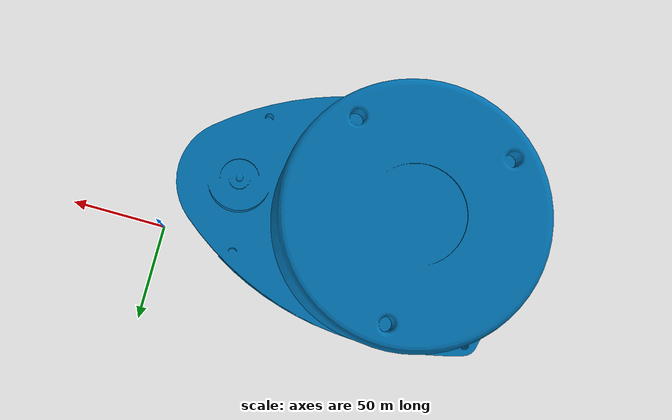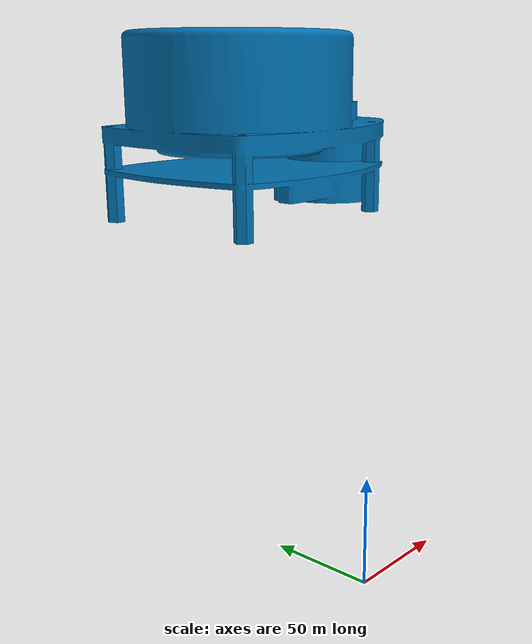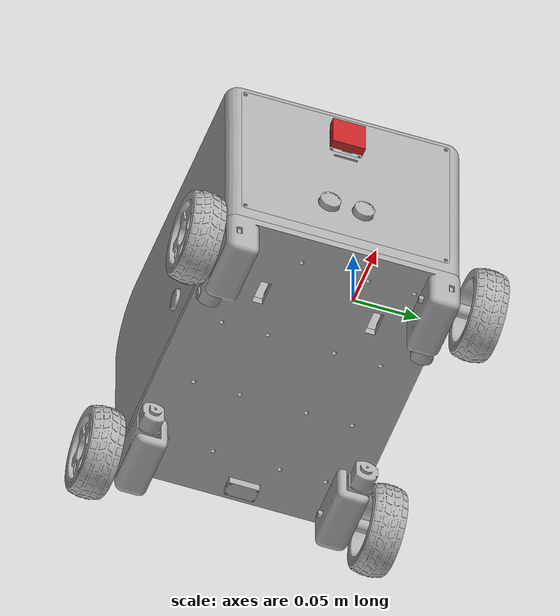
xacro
<?xml version="1.0" ?>
<robot name="adbot" xmlns:xacro="http://www.ros.org/wiki/xacro">

<xacro:include filename="$(find adbot_description)/urdf/materials.xacro" />
<xacro:include filename="$(find adbot_description)/urdf/adbot.trans" />
<xacro:include filename="$(find adbot_description)/urdf/adbot.gazebo" />
<link name="base_link">
  <inertial>
    <origin rpy="0 0 0" xyz="-0.11754380395763744 -0.008309309696808766 0.044737562719863344"/>
    <mass value="2.5803331622971"/>
    <inertia ixx="0.008602" ixy="-9e-06" ixz="-2e-06" iyy="0.016169" iyz="0.0" izz="0.024359"/>
  </inertial>
  <visual>
    <origin rpy="0 0 0" xyz="0 0 0"/>
    <geometry>
      <mesh filename="package://adbot_description/meshes/base_link.stl" scale="0.001 0.001 0.001"/>
    </geometry>
    <material name="silver"/>
  </visual>
  <collision>
    <origin rpy="0 0 0" xyz="0 0 0"/>
    <geometry>
      <mesh filename="package://adbot_description/meshes/base_link.stl" scale="0.001 0.001 0.001"/>
    </geometry>
  </collision>
</link>

<link name="body_1">
  <inertial>
    <origin rpy="0 0 0" xyz="0.0068679490257481796 -3.768684144169615e-06 0.06860823819142574"/>
    <mass value="7.889681962960808"/>
    <inertia ixx="0.059229" ixy="-1.5e-05" ixz="-0.004781" iyy="0.061661" iyz="-6e-06" izz="0.072885"/>
  </inertial>
  <visual>
    <origin rpy="0 0 0" xyz="0.117786 0.008278 -0.051635"/>
    <geometry>
      <mesh filename="package://adbot_description/meshes/body_1.stl" scale="0.001 0.001 0.001"/>
    </geometry>
    <material name="silver"/>
  </visual>
  <collision>
    <origin rpy="0 0 0" xyz="0.117786 0.008278 -0.051635"/>
    <geometry>
      <mesh filename="package://adbot_description/meshes/body_1.stl" scale="0.001 0.001 0.001"/>
    </geometry>
  </collision>
</link>

<link name="lid_1">
  <inertial>
    <origin rpy="0 0 0" xyz="0.0014890693996613257 0.07700001323512176 -0.06186218022886436"/>
    <mass value="0.4707305565916595"/>
    <inertia ixx="0.0017" ixy="0.0" ixz="0.0" iyy="0.000663" iyz="0.0" izz="0.001038"/>
  </inertial>
  <visual>
    <origin rpy="0 0 0" xyz="-0.004214 0.085278 -0.188635"/>
    <geometry>
      <mesh filename="package://adbot_description/meshes/lid_1.stl" scale="0.001 0.001 0.001"/>
    </geometry>
    <material name="silver"/>
  </visual>
  <collision>
    <origin rpy="0 0 0" xyz="-0.004214 0.085278 -0.188635"/>
    <geometry>
      <mesh filename="package://adbot_description/meshes/lid_1.stl" scale="0.001 0.001 0.001"/>
    </geometry>
  </collision>
</link>

<link name="right_door_1">
  <inertial>
    <origin rpy="0 0 0" xyz="-0.07423106191459591 -0.03892847356279871 -0.047700087861739654"/>
    <mass value="0.42036269791037006"/>
    <inertia ixx="0.001189" ixy="0.0" ixz="-0.000456" iyy="0.001385" iyz="2e-06" izz="0.000614"/>
  </inertial>
  <visual>
    <origin rpy="0 0 0" xyz="0.144786 0.010278 -0.198635"/>
    <geometry>
      <mesh filename="package://adbot_description/meshes/right_door_1.stl" scale="0.001 0.001 0.001"/>
    </geometry>
    <material name="silver"/>
  </visual>
  <collision>
    <origin rpy="0 0 0" xyz="0.144786 0.010278 -0.198635"/>
    <geometry>
      <mesh filename="package://adbot_description/meshes/right_door_1.stl" scale="0.001 0.001 0.001"/>
    </geometry>
  </collision>
</link>

<link name="left_door_1">
  <inertial>
    <origin rpy="0 0 0" xyz="-0.0742039735006979 -0.03907149996696059 -0.0477422163015801"/>
    <mass value="0.42036269791037045"/>
    <inertia ixx="0.001189" ixy="-0.0" ixz="-0.000455" iyy="0.001385" iyz="-2e-06" izz="0.000614"/>
  </inertial>
  <visual>
    <origin rpy="0 0 0" xyz="0.144786 -0.071722 -0.198635"/>
    <geometry>
      <mesh filename="package://adbot_description/meshes/left_door_1.stl" scale="0.001 0.001 0.001"/>
    </geometry>
    <material name="silver"/>
  </visual>
  <collision>
    <origin rpy="0 0 0" xyz="0.144786 -0.071722 -0.198635"/>
    <geometry>
      <mesh filename="package://adbot_description/meshes/left_door_1.stl" scale="0.001 0.001 0.001"/>
    </geometry>
  </collision>
</link>

<link name="lidar_1">
  <inertial>
    <origin rpy="0 0 0" xyz="0.0346716352597857 0.028027770370615802 0.03526252267129079"/>
    <mass value="1.3389387535639652"/>
    <inertia ixx="0.000619" ixy="-2e-06" ixz="0.000159" iyy="0.000967" iyz="-3e-06" izz="0.001105"/>
  </inertial>
  <visual>
    <origin rpy="0 0 0" xyz="0.109166 0.035895 -0.172035"/>
    <geometry>
      <mesh filename="package://adbot_description/meshes/lidar_1.stl" scale="0.001 0.001 0.001"/>
    </geometry>
    <material name="silver"/>
  </visual>
  <collision>
    <origin rpy="0 0 0" xyz="0.109166 0.035895 -0.172035"/>
    <geometry>
      <mesh filename="package://adbot_description/meshes/lidar_1.stl" scale="0.001 0.001 0.001"/>
    </geometry>
  </collision>
</link>

<link name="camera_1">
  <inertial>
    <origin rpy="0 0 0" xyz="0.0013912271839448143 6.567984359283872e-05 0.00038959398280194457"/>
    <mass value="0.006742880602527746"/>
    <inertia ixx="0.0" ixy="-0.0" ixz="-0.0" iyy="0.0" iyz="0.0" izz="0.0"/>
  </inertial>
  <visual>
    <origin rpy="0 0 0" xyz="-0.005714 0.008278 -0.164635"/>
    <geometry>
      <mesh filename="package://adbot_description/meshes/camera_1.stl" scale="0.001 0.001 0.001"/>
    </geometry>
    <material name="silver"/>
  </visual>
  <collision>
    <origin rpy="0 0 0" xyz="-0.005714 0.008278 -0.164635"/>
    <geometry>
      <mesh filename="package://adbot_description/meshes/camera_1.stl" scale="0.001 0.001 0.001"/>
    </geometry>
  </collision>
</link>

<link name="hcsr04_front_1">
  <inertial>
    <origin rpy="0 0 0" xyz="0.00033089762949217727 0.012995811567042905 0.03185305648833167"/>
    <mass value="0.048884344845399004"/>
    <inertia ixx="1e-05" ixy="-0.0" ixz="-0.0" iyy="2e-06" iyz="0.0" izz="9e-06"/>
  </inertial>
  <visual>
    <origin rpy="0 0 0" xyz="-0.004214 0.021278 -0.059835"/>
    <geometry>
      <mesh filename="package://adbot_description/meshes/hcsr04_front_1.stl" scale="0.001 0.001 0.001"/>
    </geometry>
    <material name="silver"/>
  </visual>
  <collision>
    <origin rpy="0 0 0" xyz="-0.004214 0.021278 -0.059835"/>
    <geometry>
      <mesh filename="package://adbot_description/meshes/hcsr04_front_1.stl" scale="0.001 0.001 0.001"/>
    </geometry>
  </collision>
</link>

<link name="hcsr04_right_1">
  <inertial>
    <origin rpy="0 0 0" xyz="-0.01300425203146785 -0.0005765716561509093 0.031853056488138104"/>
    <mass value="0.048884344845399254"/>
    <inertia ixx="2e-06" ixy="0.0" ixz="0.0" iyy="1e-05" iyz="0.0" izz="9e-06"/>
  </inertial>
  <visual>
    <origin rpy="0 0 0" xyz="0.078286 0.092278 -0.045835"/>
    <geometry>
      <mesh filename="package://adbot_description/meshes/hcsr04_right_1.stl" scale="0.001 0.001 0.001"/>
    </geometry>
    <material name="silver"/>
  </visual>
  <collision>
    <origin rpy="0 0 0" xyz="0.078286 0.092278 -0.045835"/>
    <geometry>
      <mesh filename="package://adbot_description/meshes/hcsr04_right_1.stl" scale="0.001 0.001 0.001"/>
    </geometry>
  </collision>
</link>

<link name="hcsr04_left_1">
  <inertial>
    <origin rpy="0 0 0" xyz="-0.012995848695311688 0.0005765981263933795 0.031853056488331755"/>
    <mass value="0.048884344845398886"/>
    <inertia ixx="2e-06" ixy="0.0" ixz="-0.0" iyy="1e-05" iyz="-0.0" izz="9e-06"/>
  </inertial>
  <visual>
    <origin rpy="0 0 0" xyz="0.078286 -0.075722 -0.045835"/>
    <geometry>
      <mesh filename="package://adbot_description/meshes/hcsr04_left_1.stl" scale="0.001 0.001 0.001"/>
    </geometry>
    <material name="silver"/>
  </visual>
  <collision>
    <origin rpy="0 0 0" xyz="0.078286 -0.075722 -0.045835"/>
    <geometry>
      <mesh filename="package://adbot_description/meshes/hcsr04_left_1.stl" scale="0.001 0.001 0.001"/>
    </geometry>
  </collision>
</link>

<link name="horn_1">
  <inertial>
    <origin rpy="0 0 0" xyz="-5.106975831115079e-08 1.3209661106280968e-08 0.03284453997922932"/>
    <mass value="0.0002829494909933873"/>
    <inertia ixx="0.0" ixy="0.0" ixz="-0.0" iyy="0.0" iyz="-0.0" izz="0.0"/>
  </inertial>
  <visual>
    <origin rpy="0 0 0" xyz="0.229786 0.008278 -0.036935"/>
    <geometry>
      <mesh filename="package://adbot_description/meshes/horn_1.stl" scale="0.001 0.001 0.001"/>
    </geometry>
    <material name="silver"/>
  </visual>
  <collision>
    <origin rpy="0 0 0" xyz="0.229786 0.008278 -0.036935"/>
    <geometry>
      <mesh filename="package://adbot_description/meshes/horn_1.stl" scale="0.001 0.001 0.001"/>
    </geometry>
  </collision>
</link>

<link name="servo_1">
  <inertial>
    <origin rpy="0 0 0" xyz="-5.712622649922672e-07 -0.014755631576454944 -0.0010994399547935504"/>
    <mass value="0.022659491876204398"/>
    <inertia ixx="3e-06" ixy="0.0" ixz="-0.0" iyy="2e-06" iyz="0.0" izz="2e-06"/>
  </inertial>
  <visual>
    <origin rpy="0 0 0" xyz="0.229786 -0.011222 -0.055135"/>
    <geometry>
      <mesh filename="package://adbot_description/meshes/servo_1.stl" scale="0.001 0.001 0.001"/>
    </geometry>
    <material name="silver"/>
  </visual>
  <collision>
    <origin rpy="0 0 0" xyz="0.229786 -0.011222 -0.055135"/>
    <geometry>
      <mesh filename="package://adbot_description/meshes/servo_1.stl" scale="0.001 0.001 0.001"/>
    </geometry>
  </collision>
</link>

<link name="wheel_fr_1">
  <inertial>
    <origin rpy="0 0 0" xyz="-4.842708241706295e-08 -0.018127091791709904 3.945685182818459e-07"/>
    <mass value="0.168011214491764"/>
    <inertia ixx="6.8e-05" ixy="-0.0" ixz="-0.0" iyy="0.000114" iyz="-0.0" izz="6.8e-05"/>
  </inertial>
  <visual>
    <origin rpy="0 0 0" xyz="0.009966 0.099378 -0.034485"/>
    <geometry>
      <mesh filename="package://adbot_description/meshes/wheel_fr_1.stl" scale="0.001 0.001 0.001"/>
    </geometry>
    <material name="silver"/>
  </visual>
  <collision>
    <origin rpy="0 0 0" xyz="0.009966 0.099378 -0.034485"/>
    <geometry>
      <mesh filename="package://adbot_description/meshes/wheel_fr_1.stl" scale="0.001 0.001 0.001"/>
    </geometry>
  </collision>
</link>

<link name="motor_fr_1">
  <inertial>
    <origin rpy="0 0 0" xyz="-0.0026419201691951777 -0.009344089364072758 -0.00864962528426276"/>
    <mass value="0.11062030248941061"/>
    <inertia ixx="8e-06" ixy="-2e-06" ixz="-0.0" iyy="4.6e-05" iyz="-0.0" izz="4.6e-05"/>
  </inertial>
  <visual>
    <origin rpy="0 0 0" xyz="0.030536 0.079478 -0.043135"/>
    <geometry>
      <mesh filename="package://adbot_description/meshes/motor_fr_1.stl" scale="0.001 0.001 0.001"/>
    </geometry>
    <material name="silver"/>
  </visual>
  <collision>
    <origin rpy="0 0 0" xyz="0.030536 0.079478 -0.043135"/>
    <geometry>
      <mesh filename="package://adbot_description/meshes/motor_fr_1.stl" scale="0.001 0.001 0.001"/>
    </geometry>
  </collision>
</link>

<link name="wheel_br_1">
  <inertial>
    <origin rpy="0 0 0" xyz="-4.845424975141732e-08 -0.018127091791710334 3.9456851823327366e-07"/>
    <mass value="0.1680112144917677"/>
    <inertia ixx="6.8e-05" ixy="-0.0" ixz="-0.0" iyy="0.000114" iyz="-0.0" izz="6.8e-05"/>
  </inertial>
  <visual>
    <origin rpy="0 0 0" xyz="0.225606 0.099378 -0.034485"/>
    <geometry>
      <mesh filename="package://adbot_description/meshes/wheel_br_1.stl" scale="0.001 0.001 0.001"/>
    </geometry>
    <material name="silver"/>
  </visual>
  <collision>
    <origin rpy="0 0 0" xyz="0.225606 0.099378 -0.034485"/>
    <geometry>
      <mesh filename="package://adbot_description/meshes/wheel_br_1.stl" scale="0.001 0.001 0.001"/>
    </geometry>
  </collision>
</link>

<link name="motor_br_1">
  <inertial>
    <origin rpy="0 0 0" xyz="0.0026418102191671233 -0.009344090304755526 -0.008649625742520761"/>
    <mass value="0.11062026520763492"/>
    <inertia ixx="8e-06" ixy="2e-06" ixz="0.0" iyy="4.6e-05" iyz="0.0" izz="4.6e-05"/>
  </inertial>
  <visual>
    <origin rpy="0 0 0" xyz="0.205036 0.079478 -0.043135"/>
    <geometry>
      <mesh filename="package://adbot_description/meshes/motor_br_1.stl" scale="0.001 0.001 0.001"/>
    </geometry>
    <material name="silver"/>
  </visual>
  <collision>
    <origin rpy="0 0 0" xyz="0.205036 0.079478 -0.043135"/>
    <geometry>
      <mesh filename="package://adbot_description/meshes/motor_br_1.stl" scale="0.001 0.001 0.001"/>
    </geometry>
  </collision>
</link>

<link name="wheel_bl_1">
  <inertial>
    <origin rpy="0 0 0" xyz="-5.2329374750081925e-08 0.01812711825986646 3.945685182957237e-07"/>
    <mass value="0.16801121449176495"/>
    <inertia ixx="6.8e-05" ixy="-0.0" ixz="0.0" iyy="0.000114" iyz="0.0" izz="6.8e-05"/>
  </inertial>
  <visual>
    <origin rpy="0 0 0" xyz="0.225606 -0.082822 -0.034485"/>
    <geometry>
      <mesh filename="package://adbot_description/meshes/wheel_bl_1.stl" scale="0.001 0.001 0.001"/>
    </geometry>
    <material name="silver"/>
  </visual>
  <collision>
    <origin rpy="0 0 0" xyz="0.225606 -0.082822 -0.034485"/>
    <geometry>
      <mesh filename="package://adbot_description/meshes/wheel_bl_1.stl" scale="0.001 0.001 0.001"/>
    </geometry>
  </collision>
</link>

<link name="motor_bl_1">
  <inertial>
    <origin rpy="0 0 0" xyz="0.002641819442415372 0.009344115834315034 -0.008649625284262712"/>
    <mass value="0.11062030248941077"/>
    <inertia ixx="8e-06" ixy="-2e-06" ixz="0.0" iyy="4.6e-05" iyz="0.0" izz="4.6e-05"/>
  </inertial>
  <visual>
    <origin rpy="0 0 0" xyz="0.205036 -0.062922 -0.043135"/>
    <geometry>
      <mesh filename="package://adbot_description/meshes/motor_bl_1.stl" scale="0.001 0.001 0.001"/>
    </geometry>
    <material name="silver"/>
  </visual>
  <collision>
    <origin rpy="0 0 0" xyz="0.205036 -0.062922 -0.043135"/>
    <geometry>
      <mesh filename="package://adbot_description/meshes/motor_bl_1.stl" scale="0.001 0.001 0.001"/>
    </geometry>
  </collision>
</link>

<link name="wheel_fl_1">
  <inertial>
    <origin rpy="0 0 0" xyz="-5.230220704449673e-08 0.018127118259866987 3.9456851833041817e-07"/>
    <mass value="0.16801121449176645"/>
    <inertia ixx="6.8e-05" ixy="-0.0" ixz="0.0" iyy="0.000114" iyz="0.0" izz="6.8e-05"/>
  </inertial>
  <visual>
    <origin rpy="0 0 0" xyz="0.009966 -0.082822 -0.034485"/>
    <geometry>
      <mesh filename="package://adbot_description/meshes/wheel_fl_1.stl" scale="0.001 0.001 0.001"/>
    </geometry>
    <material name="silver"/>
  </visual>
  <collision>
    <origin rpy="0 0 0" xyz="0.009966 -0.082822 -0.034485"/>
    <geometry>
      <mesh filename="package://adbot_description/meshes/wheel_fl_1.stl" scale="0.001 0.001 0.001"/>
    </geometry>
  </collision>
</link>

<link name="motor_fl_1">
  <inertial>
    <origin rpy="0 0 0" xyz="-0.002641910945947047 0.009344116774997788 -0.008649625742520761"/>
    <mass value="0.11062026520763493"/>
    <inertia ixx="8e-06" ixy="2e-06" ixz="-0.0" iyy="4.6e-05" iyz="-0.0" izz="4.6e-05"/>
  </inertial>
  <visual>
    <origin rpy="0 0 0" xyz="0.030536 -0.062922 -0.043135"/>
    <geometry>
      <mesh filename="package://adbot_description/meshes/motor_fl_1.stl" scale="0.001 0.001 0.001"/>
    </geometry>
    <material name="silver"/>
  </visual>
  <collision>
    <origin rpy="0 0 0" xyz="0.030536 -0.062922 -0.043135"/>
    <geometry>
      <mesh filename="package://adbot_description/meshes/motor_fl_1.stl" scale="0.001 0.001 0.001"/>
    </geometry>
  </collision>
</link>

<!-- Hokuyo Laser -->
<link name="hokuyo_link">
  <collision>
    <origin xyz="0 0 0" rpy="0 0 0"/>
    <geometry>
  <box size="0.1 0.1 0.1"/>
    </geometry>
  </collision>

  <visual>
    <origin xyz="0 0 0" rpy="0 0 0"/>
    <geometry>
      <mesh filename="package://adbot_description/meshes/lidar_1.stl"/>
    </geometry>
  </visual>

  <inertial>
    <mass value="1e-5" />
    <origin xyz="0 0 0" rpy="0 0 0"/>
    <inertia ixx="1e-6" ixy="0" ixz="0" iyy="1e-6" iyz="0" izz="1e-6" />
  </inertial>
</link>

<!-- Camera -->
<link name="camera_link">
  <collision>
    <origin xyz="0 0 0" rpy="0 0 0"/>
    <geometry>
  <box size="0.0067 0.025 0.024"/>
    </geometry>
  </collision>

  <visual>
    <origin xyz="0 0 0" rpy="0 0 0"/>
    <geometry>
  <box size="0.0067 0.025 0.025"/>
    </geometry>
    <material name="red"/>
  </visual>

  <inertial>
    <mass value="1e-5" />
    <origin xyz="0 0 0" rpy="0 0 0"/>
    <inertia ixx="1e-6" ixy="0" ixz="0" iyy="1e-6" iyz="0" izz="1e-6" />
  </inertial>
</link>

<joint name="base_body" type="fixed">
  <origin rpy="0 0 0" xyz="-0.117786 -0.008278 0.051635"/>
  <parent link="base_link"/>
  <child link="body_1"/>
</joint>

<joint name="lid_body" type="fixed">
  <origin rpy="0 0 0" xyz="0.122 -0.077 0.137"/>
  <parent link="body_1"/>
  <child link="lid_1"/>
</joint>

<joint name="right_door" type="revolute">
  <origin rpy="0 0 0" xyz="-0.027 -0.002 0.147"/>
  <parent link="body_1"/>
  <child link="right_door_1"/>
  <axis xyz="-0.0 1.0 0.0"/>
  <limit effort="100" lower="0.0" upper="1.570796" velocity="100"/>
</joint>

<joint name="left_door" type="revolute">
  <origin rpy="0 0 0" xyz="-0.027 0.08 0.147"/>
  <parent link="body_1"/>
  <child link="left_door_1"/>
  <axis xyz="-0.0 1.0 0.0"/>
  <limit effort="100" lower="0.0" upper="1.570796" velocity="100"/>
</joint>

<joint name="lidar_body" type="fixed">
  <origin rpy="0 0 0" xyz="0.00862 -0.027617 0.1204"/>
  <parent link="body_1"/>
  <child link="lidar_1"/>
</joint>

<joint name="camera_lid" type="fixed">
  <origin rpy="0 0 0" xyz="0.0015 0.077 -0.024"/>
  <parent link="lid_1"/>
  <child link="camera_1"/>
</joint>

<joint name="hcsr04_front" type="fixed">
  <origin rpy="0 0 0" xyz="0.0 0.064 -0.1288"/>
  <parent link="lid_1"/>
  <child link="hcsr04_front_1"/>
</joint>

<joint name="hcsr04_right" type="fixed">
  <origin rpy="0 0 0" xyz="0.0395 -0.084 -0.0058"/>
  <parent link="body_1"/>
  <child link="hcsr04_right_1"/>
</joint>

<joint name="hcsr04_left" type="fixed">
  <origin rpy="0 0 0" xyz="0.0395 0.084 -0.0058"/>
  <parent link="body_1"/>
  <child link="hcsr04_left_1"/>
</joint>

<joint name="servo_horn" type="revolute">
  <origin rpy="0 0 0" xyz="0.0 -0.0195 -0.0182"/>
  <parent link="servo_1"/>
  <child link="horn_1"/>
  <axis xyz="-0.0 -0.0 1.0"/>
  <limit effort="100" lower="0.0" upper="0.523599" velocity="100"/>
</joint>

<joint name="servo_body" type="fixed">
  <origin rpy="0 0 0" xyz="-0.112 0.0195 0.0035"/>
  <parent link="body_1"/>
  <child link="servo_1"/>
</joint>

<joint name="wheel_motor_fr" type="continuous">
  <origin rpy="0 0 0" xyz="0.02057 -0.0199 -0.00865"/>
  <parent link="motor_fr_1"/>
  <child link="wheel_fr_1"/>
  <axis xyz="0.0 1.0 -0.0"/>
</joint>

<joint name="motor_base_fr" type="fixed">
  <origin rpy="0 0 0" xyz="-0.030536 -0.079478 0.043135"/>
  <parent link="base_link"/>
  <child link="motor_fr_1"/>
</joint>

<joint name="wheel_motor_br" type="continuous">
  <origin rpy="0 0 0" xyz="-0.02057 -0.0199 -0.00865"/>
  <parent link="motor_br_1"/>
  <child link="wheel_br_1"/>
  <axis xyz="0.0 1.0 -0.0"/>
</joint>

<joint name="motor_base_br" type="fixed">
  <origin rpy="0 0 0" xyz="-0.205036 -0.079478 0.043135"/>
  <parent link="base_link"/>
  <child link="motor_br_1"/>
</joint>

<joint name="wheel_motor_bl" type="continuous">
  <origin rpy="0 0 0" xyz="-0.02057 0.0199 -0.00865"/>
  <parent link="motor_bl_1"/>
  <child link="wheel_bl_1"/>
  <axis xyz="-0.0 1.0 0.0"/>
</joint>

<joint name="motor_base_bl" type="fixed">
  <origin rpy="0 0 0" xyz="-0.205036 0.062922 0.043135"/>
  <parent link="base_link"/>
  <child link="motor_bl_1"/>
</joint>

<joint name="wheel_motor_fl" type="continuous">
  <origin rpy="0 0 0" xyz="0.02057 0.0199 -0.00865"/>
  <parent link="motor_fl_1"/>
  <child link="wheel_fl_1"/>
  <axis xyz="-0.0 1.0 0.0"/>
</joint>

<joint name="motor_base_fl" type="fixed">
  <origin rpy="0 0 0" xyz="-0.030536 0.062922 0.043135"/>
  <parent link="base_link"/>
  <child link="motor_fl_1"/>
</joint>

<joint name="hokuyo_joint" type="fixed">
  <axis xyz="0 1 0" />
  <origin xyz="-0.081681 0.007799 0.229235" rpy="0 0 0"/>
  <parent link="base_link"/>
  <child link="hokuyo_link"/>
</joint>

<joint name="camera_joint" type="fixed">
  <axis xyz="0 1 0" />
  <origin xyz="0.01191 -0.00827 0.16718" rpy="0 0 0"/>
  <parent link="base_link"/>
  <child link="camera_link"/>
</joint>

</robot>

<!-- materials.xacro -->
<robot name="adbot" xmlns:xacro="http://www.ros.org/wiki/xacro" >

<material name="silver">
  <color rgba="0.700 0.700 0.700 1.000"/>
</material>

</robot>

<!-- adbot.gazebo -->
<robot name="adbot" xmlns:xacro="http://www.ros.org/wiki/xacro" >

<xacro:property name="body_color" value="Gazebo/Silver" />
<xacro:property name="camera_link" value="0.05" /> <!-- Size of square 'camera' box -->

<gazebo>
  <plugin filename="libgazebo_ros_control.so" name="control"/>
</gazebo>
<gazebo reference="base_link">
  <material>${body_color}</material>
  <mu1>0.2</mu1>
  <mu2>0.2</mu2>
  <selfCollide>true</selfCollide>
  <gravity>true</gravity>
</gazebo>

<gazebo reference="body_1">
  <material>${body_color}</material>
  <mu1>0.2</mu1>
  <mu2>0.2</mu2>
  <selfCollide>true</selfCollide>
</gazebo>

<gazebo reference="lid_1">
  <material>${body_color}</material>
  <mu1>0.2</mu1>
  <mu2>0.2</mu2>
  <selfCollide>true</selfCollide>
</gazebo>

<gazebo reference="right_door_1">
  <material>${body_color}</material>
  <mu1>0.2</mu1>
  <mu2>0.2</mu2>
  <selfCollide>true</selfCollide>
</gazebo>

<gazebo reference="left_door_1">
  <material>${body_color}</material>
  <mu1>0.2</mu1>
  <mu2>0.2</mu2>
  <selfCollide>true</selfCollide>
</gazebo>

<gazebo reference="lidar_1">
  <material>${body_color}</material>
  <mu1>0.2</mu1>
  <mu2>0.2</mu2>
  <selfCollide>true</selfCollide>
</gazebo>

<gazebo reference="camera_1">
  <material>${body_color}</material>
  <mu1>0.2</mu1>
  <mu2>0.2</mu2>
  <selfCollide>true</selfCollide>
</gazebo>

<gazebo reference="hcsr04_front_1">
  <material>${body_color}</material>
  <mu1>0.2</mu1>
  <mu2>0.2</mu2>
  <selfCollide>true</selfCollide>
</gazebo>

<gazebo reference="hcsr04_right_1">
  <material>${body_color}</material>
  <mu1>0.2</mu1>
  <mu2>0.2</mu2>
  <selfCollide>true</selfCollide>
</gazebo>

<gazebo reference="hcsr04_left_1">
  <material>${body_color}</material>
  <mu1>0.2</mu1>
  <mu2>0.2</mu2>
  <selfCollide>true</selfCollide>
</gazebo>

<gazebo reference="horn_1">
  <material>${body_color}</material>
  <mu1>0.2</mu1>
  <mu2>0.2</mu2>
  <selfCollide>true</selfCollide>
</gazebo>

<gazebo reference="servo_1">
  <material>${body_color}</material>
  <mu1>0.2</mu1>
  <mu2>0.2</mu2>
  <selfCollide>true</selfCollide>
</gazebo>

<gazebo reference="wheel_fr_1">
  <material>${body_color}</material>
  <mu1>80</mu1>
  <mu2>80</mu2>
  <selfCollide>true</selfCollide>
</gazebo>

<gazebo reference="motor_fr_1">
  <material>${body_color}</material>
  <mu1>0.2</mu1>
  <mu2>0.2</mu2>
  <selfCollide>true</selfCollide>
</gazebo>

<gazebo reference="wheel_br_1">
  <material>${body_color}</material>
  <mu1>80</mu1>
  <mu2>80</mu2>
  <selfCollide>true</selfCollide>
</gazebo>

<gazebo reference="motor_br_1">
  <material>${body_color}</material>
  <mu1>0.2</mu1>
  <mu2>0.2</mu2>
  <selfCollide>true</selfCollide>
</gazebo>

<gazebo reference="wheel_bl_1">
  <material>${body_color}</material>
  <mu1>80</mu1>
  <mu2>80</mu2>
  <selfCollide>true</selfCollide>
</gazebo>

<gazebo reference="motor_bl_1">
  <material>${body_color}</material>
  <mu1>0.2</mu1>
  <mu2>0.2</mu2>
  <selfCollide>true</selfCollide>
</gazebo>

<gazebo reference="wheel_fl_1">
  <material>${body_color}</material>
  <mu1>80</mu1>
  <mu2>80</mu2>
  <selfCollide>true</selfCollide>
</gazebo>

<gazebo reference="motor_fl_1">
  <material>${body_color}</material>
  <mu1>0.2</mu1>
  <mu2>0.2</mu2>
  <selfCollide>true</selfCollide>
</gazebo>

<gazebo>
  <plugin name="skid_steer_drive_controller" filename="libgazebo_ros_skid_steer_drive.so">
    <updateRate>100.0</updateRate>
    <robotNamespace>/</robotNamespace>
    <leftFrontJoint>wheel_motor_fl</leftFrontJoint>
    <rightFrontJoint>wheel_motor_fr</rightFrontJoint>
    <leftRearJoint>wheel_motor_bl</leftRearJoint>
    <rightRearJoint>wheel_motor_br</rightRearJoint>
    <wheelSeparation>0.2166</wheelSeparation>
    <wheelDiameter>0.065</wheelDiameter>
    <robotBaseFrame>base_link</robotBaseFrame>
    <torque>20</torque>
    <topicName>cmd_vel</topicName>
    <broadcastTF>true</broadcastTF>
  </plugin>
</gazebo>

<!-- hokuyo -->
<gazebo reference="hokuyo_link">
  <sensor type="ray" name="head_hokuyo_sensor">
    <pose>0 0 0 0 0 0</pose>
    <visualize>true</visualize>
    <update_rate>40</update_rate>
    <ray>
      <scan>
        <horizontal>
          <samples>720</samples>
          <resolution>1</resolution>
          <min_angle>-3.141592</min_angle>
          <max_angle>3.141592</max_angle>
        </horizontal>
      </scan>
      <range>
        <min>0.10</min>
        <max>30.0</max>
        <resolution>0.01</resolution>
      </range>
      <noise>
        <type>gaussian</type>
        <mean>0.0</mean>
        <stddev>0.01</stddev>
      </noise>
    </ray>
    <plugin name="gazebo_ros_head_hokuyo_controller" filename="libgazebo_ros_laser.so">
      <topicName>/scan</topicName>
      <frameName>hokuyo_link</frameName>
    </plugin>
  </sensor>
</gazebo>

<!-- camera -->
<gazebo reference="camera_link">
  <sensor type="camera" name="camera1">
    <update_rate>30.0</update_rate>
    <camera name="head">
      <horizontal_fov>1.3962634</horizontal_fov>
      <image>
        <width>800</width>
        <height>800</height>
        <format>R8G8B8</format>
      </image>
      <clip>
        <near>0.02</near>
        <far>300</far>
      </clip>
      <noise>
        <type>gaussian</type>
        <!-- Noise is sampled independently per pixel on each frame.
             That pixel's noise value is added to each of its color
             channels, which at that point lie in the range [0,1]. -->
        <mean>0.0</mean>
        <stddev>0.007</stddev>
      </noise>
    </camera>
    <plugin name="camera_controller" filename="libgazebo_ros_camera.so">
      <alwaysOn>true</alwaysOn>
      <updateRate>0.0</updateRate>
      <cameraName>rrbot/camera1</cameraName>
      <imageTopicName>image_raw</imageTopicName>
      <cameraInfoTopicName>camera_info</cameraInfoTopicName>
      <frameName>camera_link</frameName>
      <hackBaseline>0.07</hackBaseline>
      <distortionK1>0.0</distortionK1>
      <distortionK2>0.0</distortionK2>
      <distortionK3>0.0</distortionK3>
      <distortionT1>0.0</distortionT1>
      <distortionT2>0.0</distortionT2>
    </plugin>
  </sensor>
</gazebo>

</robot>
